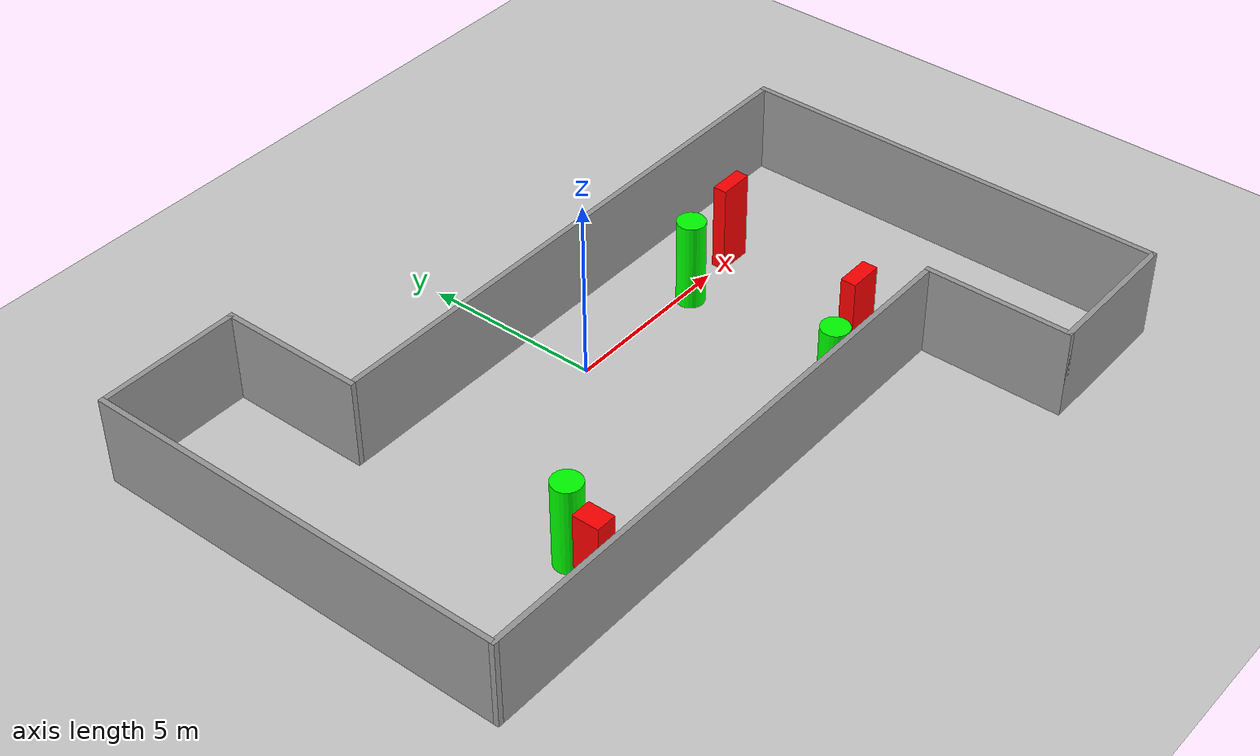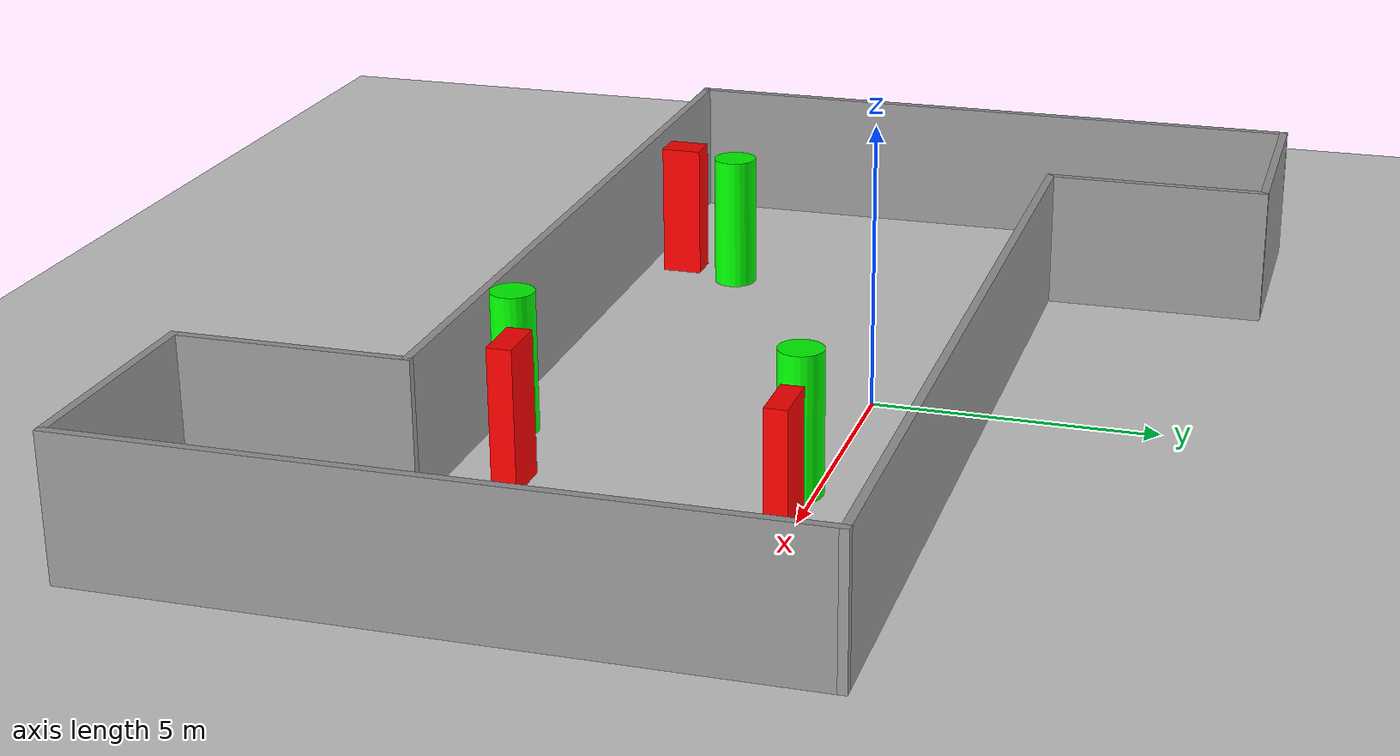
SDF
<sdf version="1.7">
 <world name="default">
  <light name="sun" type="directional">
   <pose>0 0 10 0 -0 0</pose>
   <diffuse>0.8 0.8 0.8 1</diffuse>
   <specular>0.2 0.2 0.2 1</specular>
   <attenuation>
    <range>1000</range>
    <constant>0.9</constant>
    <linear>0.01</linear>
    <quadratic>0.001</quadratic>
   </attenuation>
   <direction>-0.5 0.1 -0.9</direction>
   <spot><inner_angle>0</inner_angle><outer_angle>0</outer_angle><falloff>0</falloff></spot>
  </light>
  <model name="ground_plane">
   <static>1</static>
   <link name="link">
    <collision name="collision">
     <geometry><plane><normal>0 0 1</normal><size>100 100</size></plane></geometry>
     <surface>
      <contact><collide_bitmask>65535</collide_bitmask></contact>
      <friction><ode><mu>100</mu><mu2>50</mu2></ode></friction>
     </surface>
    </collision>
    <visual name="visual">
     <cast_shadows>0</cast_shadows>
     <geometry><plane><normal>0 0 1</normal><size>100 100</size></plane></geometry>
     <material>
      <script><uri>file://media/materials/scripts/gazebo.material</uri><name>Gazebo/Grey</name></script>
     </material>
    </visual>
   </link>
  </model>
  <gravity>0 0 -9.8</gravity>
  <magnetic_field>6e-06 2.3e-05 -4.2e-05</magnetic_field>
  <atmosphere type="adiabatic"/>
  <physics type="ode">
   <max_step_size>0.001</max_step_size>
   <real_time_factor>1</real_time_factor>
   <real_time_update_rate>1000</real_time_update_rate>
  </physics>
  <scene><ambient>0.4 0.4 0.4 1</ambient><background>0.7 0.7 0.7 1</background><shadows>1</shadows></scene>
  <spherical_coordinates>
   <surface_model>EARTH_WGS84</surface_model>
   <latitude_deg>0</latitude_deg>
   <longitude_deg>0</longitude_deg>
   <elevation>0</elevation>
   <heading_deg>0</heading_deg>
  </spherical_coordinates>
  <model name="my_base_walls">
   <link name="Wall_13">
    <collision name="Wall_13_Collision">
     <geometry><box><size>12.15 0.15 2.5</size></box></geometry>
     <pose>0 0 1.25 0 -0 0</pose>
    </collision>
    <visual name="Wall_13_Visual">
     <pose>0 0 1.25 0 -0 0</pose>
     <geometry><box><size>12.15 0.15 2.5</size></box></geometry>
     <material>
      <script><uri>file://media/materials/scripts/gazebo.material</uri><name>Gazebo/Grey</name></script>
      <ambient>1 1 1 1</ambient>
     </material>
     <meta><layer>0</layer></meta>
    </visual>
    <pose>10 -2 0 0 -0 1.5708</pose>
   </link>
   <link name="Wall_15">
    <collision name="Wall_15_Collision">
     <geometry><box><size>16.15 0.15 2.5</size></box></geometry>
     <pose>0 0 1.25 0 -0 0</pose>
    </collision>
    <visual name="Wall_15_Visual">
     <pose>0 0 1.25 0 -0 0</pose>
     <geometry><box><size>16.15 0.15 2.5</size></box></geometry>
     <material>
      <script><uri>file://media/materials/scripts/gazebo.material</uri><name>Gazebo/Grey</name></script>
      <ambient>1 1 1 1</ambient>
     </material>
     <meta><layer>0</layer></meta>
    </visual>
    <pose>2 4 0 0 -0 3.14159</pose>
   </link>
   <link name="Wall_17">
    <collision name="Wall_17_Collision">
     <geometry><box><size>4.15 0.15 2.5</size></box></geometry>
     <pose>0 0 1.25 0 -0 0</pose>
    </collision>
    <visual name="Wall_17_Visual">
     <pose>0 0 1.25 0 -0 0</pose>
     <geometry><box><size>4.15 0.15 2.5</size></box></geometry>
     <material>
      <script><uri>file://media/materials/scripts/gazebo.material</uri><name>Gazebo/Grey</name></script>
      <ambient>1 1 1 1</ambient>
     </material>
     <meta><layer>0</layer></meta>
    </visual>
    <pose>6 -6 0 0 -0 -1.5708</pose>
   </link>
   <link name="Wall_19">
    <collision name="Wall_19_Collision">
     <geometry><box><size>12.15 0.15 2.5</size></box></geometry>
     <pose>0 0 1.25 0 -0 0</pose>
    </collision>
    <visual name="Wall_19_Visual">
     <pose>0 0 1.25 0 -0 0</pose>
     <geometry><box><size>12.15 0.15 2.5</size></box></geometry>
     <material>
      <script><uri>file://media/materials/scripts/gazebo.material</uri><name>Gazebo/Grey</name></script>
      <ambient>1 1 1 1</ambient>
     </material>
     <meta><layer>0</layer></meta>
    </visual>
    <pose>-10 2 0 0 -0 1.5708</pose>
   </link>
   <link name="Wall_21">
    <collision name="Wall_21_Collision">
     <geometry><box><size>4.15 0.15 2.5</size></box></geometry>
     <pose>0 0 1.25 0 -0 0</pose>
    </collision>
    <visual name="Wall_21_Visual">
     <pose>0 0 1.25 0 -0 0</pose>
     <geometry><box><size>4.15 0.15 2.5</size></box></geometry>
     <material>
      <script><uri>file://media/materials/scripts/gazebo.material</uri><name>Gazebo/Grey</name></script>
      <ambient>1 1 1 1</ambient>
     </material>
     <meta><layer>0</layer></meta>
    </visual>
    <pose>-8 8 0 0 -0 0</pose>
   </link>
   <link name="Wall_23">
    <collision name="Wall_23_Collision">
     <geometry><box><size>4.15 0.15 2.5</size></box></geometry>
     <pose>0 0 1.25 0 -0 0</pose>
    </collision>
    <visual name="Wall_23_Visual">
     <pose>0 0 1.25 0 -0 0</pose>
     <geometry><box><size>4.15 0.15 2.5</size></box></geometry>
     <material>
      <script><uri>file://media/materials/scripts/gazebo.material</uri><name>Gazebo/Grey</name></script>
      <ambient>1 1 1 1</ambient>
     </material>
     <meta><layer>0</layer></meta>
    </visual>
    <pose>-6 6 0 0 -0 -1.5708</pose>
   </link>
   <link name="Wall_25">
    <collision name="Wall_25_Collision">
     <geometry><box><size>4.15 0.15 2.5</size></box></geometry>
     <pose>0 0 1.25 0 -0 0</pose>
    </collision>
    <visual name="Wall_25_Visual">
     <pose>0 0 1.25 0 -0 0</pose>
     <geometry><box><size>4.15 0.15 2.5</size></box></geometry>
     <material>
      <script><uri>file://media/materials/scripts/gazebo.material</uri><name>Gazebo/Grey</name></script>
      <ambient>1 1 1 1</ambient>
     </material>
     <meta><layer>0</layer></meta>
    </visual>
    <pose>8 -8 0 0 -0 0</pose>
   </link>
   <link name="Wall_9">
    <collision name="Wall_9_Collision">
     <geometry><box><size>16.15 0.15 2.5</size></box></geometry>
     <pose>0 0 1.25 0 -0 0</pose>
    </collision>
    <visual name="Wall_9_Visual">
     <pose>0 0 1.25 0 -0 0</pose>
     <geometry><box><size>16.15 0.15 2.5</size></box></geometry>
     <material>
      <script><uri>file://media/materials/scripts/gazebo.material</uri><name>Gazebo/Grey</name></script>
      <ambient>1 1 1 1</ambient>
     </material>
     <meta><layer>0</layer></meta>
    </visual>
    <pose>-2 -4 0 0 -0 3.14159</pose>
   </link>
   <static>1</static>
   <pose>-0 -2 0 0 -0 0</pose>
  </model>
  <model name="cylinder1">
   <static>1</static>
   <link name="link">
    <inertial>
     <mass>1</mass>
     <inertia><ixx>0.5</ixx><ixy>0</ixy><ixz>0</ixz><iyy>0.5</iyy><iyz>0</iyz><izz>1</izz></inertia>
    </inertial>
    <collision name="collision">
     <geometry><cylinder><radius>0.3990518874519623</radius><length>2.5</length></cylinder></geometry>
    </collision>
    <visual name="visual">
     <geometry><cylinder><radius>0.3990518874519623</radius><length>2.5</length></cylinder></geometry>
     <material>
      <ambient>0 1 0 1</ambient>
      <diffuse>0 1 0 1</diffuse>
      <specular>0.1 0.1 0.1 1</specular>
      <emissive>0 0 0 0</emissive>
     </material>
    </visual>
   </link>
   <pose>-5.420004240079848 -4.0511243911586154 1.25 0 0 0</pose>
  </model>
  <model name="cylinder2">
   <static>1</static>
   <link name="link">
    <inertial>
     <mass>1</mass>
     <inertia><ixx>0.5</ixx><ixy>0</ixy><ixz>0</ixz><iyy>0.5</iyy><iyz>0</iyz><izz>1</izz></inertia>
    </inertial>
    <collision name="collision">
     <geometry><cylinder><radius>0.3861026114210705</radius><length>2.5</length></cylinder></geometry>
    </collision>
    <visual name="visual">
     <geometry><cylinder><radius>0.3861026114210705</radius><length>2.5</length></cylinder></geometry>
     <material>
      <ambient>0 1 0 1</ambient>
      <diffuse>0 1 0 1</diffuse>
      <specular>0.1 0.1 0.1 1</specular>
      <emissive>0 0 0 0</emissive>
     </material>
    </visual>
   </link>
   <pose>2.707046201813508 -5.524113491121922 1.25 0 0 0</pose>
  </model>
  <model name="cylinder3">
   <static>1</static>
   <link name="link">
    <inertial>
     <mass>1</mass>
     <inertia><ixx>0.5</ixx><ixy>0</ixy><ixz>0</ixz><iyy>0.5</iyy><iyz>0</iyz><izz>1</izz></inertia>
    </inertial>
    <collision name="collision">
     <geometry><cylinder><radius>0.3861814340818526</radius><length>2.5</length></cylinder></geometry>
    </collision>
    <visual name="visual">
     <geometry><cylinder><radius>0.3861814340818526</radius><length>2.5</length></cylinder></geometry>
     <material>
      <ambient>0 1 0 1</ambient>
      <diffuse>0 1 0 1</diffuse>
      <specular>0.1 0.1 0.1 1</specular>
      <emissive>0 0 0 0</emissive>
     </material>
    </visual>
   </link>
   <pose>3.911579428241108 -0.24062511012038357 1.25 0 0 0</pose>
  </model>
  <model name="box1">
   <static>1</static>
   <link name="link">
    <inertial>
     <mass>1</mass>
     <inertia><ixx>0.083</ixx><ixy>0</ixy><ixz>0</ixz><iyy>0.083</iyy><iyz>0</iyz><izz>0.083</izz></inertia>
    </inertial>
    <collision name="collision">
     <geometry><box><size>0.9581241326813792 0.3759013412896459 2.5</size></box></geometry>
    </collision>
    <visual name="visual">
     <geometry><box><size>0.9581241326813792 0.3759013412896459 2.5</size></box></geometry>
     <material>
      <ambient>1 0 0 1</ambient>
      <diffuse>1 0 0 1</diffuse>
      <specular>0.1 0.1 0.1 1</specular>
      <emissive>0 0 0 0</emissive>
     </material>
    </visual>
    <sensor name="my_contact" type="contact">
     <contact><collision>box_collision</collision><topic>__default_topic__</topic></contact>
    </sensor>
   </link>
   <pose>5.920158150376304 0.03515411990957329 1.25 0 0 0</pose>
  </model>
  <model name="box2">
   <static>1</static>
   <link name="link">
    <inertial>
     <mass>1</mass>
     <inertia><ixx>0.083</ixx><ixy>0</ixy><ixz>0</ixz><iyy>0.083</iyy><iyz>0</iyz><izz>0.083</izz></inertia>
    </inertial>
    <collision name="collision">
     <geometry><box><size>0.9404721428685208 0.4242694006049371 2.5</size></box></geometry>
    </collision>
    <visual name="visual">
     <geometry><box><size>0.9404721428685208 0.4242694006049371 2.5</size></box></geometry>
     <material>
      <ambient>1 0 0 1</ambient>
      <diffuse>1 0 0 1</diffuse>
      <specular>0.1 0.1 0.1 1</specular>
      <emissive>0 0 0 0</emissive>
     </material>
    </visual>
    <sensor name="my_contact" type="contact">
     <contact><collision>box_collision</collision><topic>__default_topic__</topic></contact>
    </sensor>
   </link>
   <pose>4.7797994659904735 -4.77647141099684 1.25 0 0 0</pose>
  </model>
  <model name="box3">
   <static>1</static>
   <link name="link">
    <inertial>
     <mass>1</mass>
     <inertia><ixx>0.083</ixx><ixy>0</ixy><ixz>0</ixz><iyy>0.083</iyy><iyz>0</iyz><izz>0.083</izz></inertia>
    </inertial>
    <collision name="collision">
     <geometry><box><size>0.5703416587586829 0.7395476748562294 2.5</size></box></geometry>
    </collision>
    <visual name="visual">
     <geometry><box><size>0.5703416587586829 0.7395476748562294 2.5</size></box></geometry>
     <material>
      <ambient>1 0 0 1</ambient>
      <diffuse>1 0 0 1</diffuse>
      <specular>0.1 0.1 0.1 1</specular>
      <emissive>0 0 0 0</emissive>
     </material>
    </visual>
    <sensor name="my_contact" type="contact">
     <contact><collision>box_collision</collision><topic>__default_topic__</topic></contact>
    </sensor>
   </link>
   <pose>-5.892425052226939 -5.210849490947055 1.25 0 0 0</pose>
  </model>
 </world>
</sdf>
